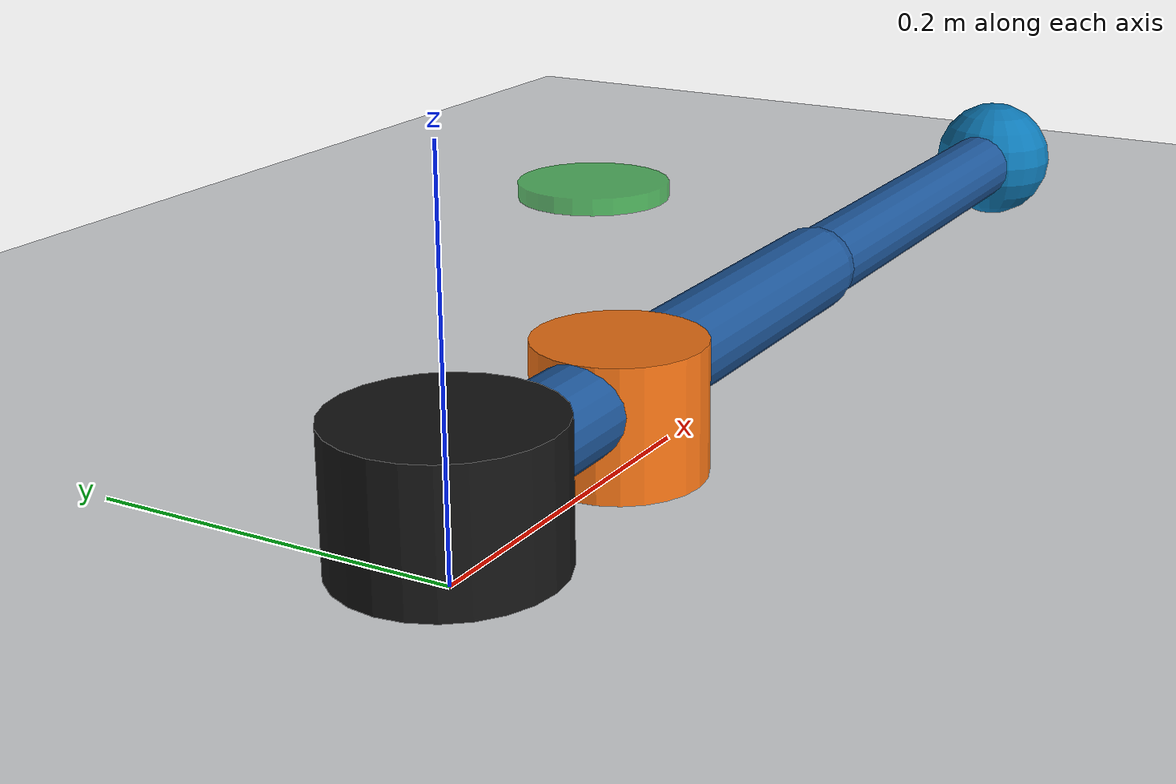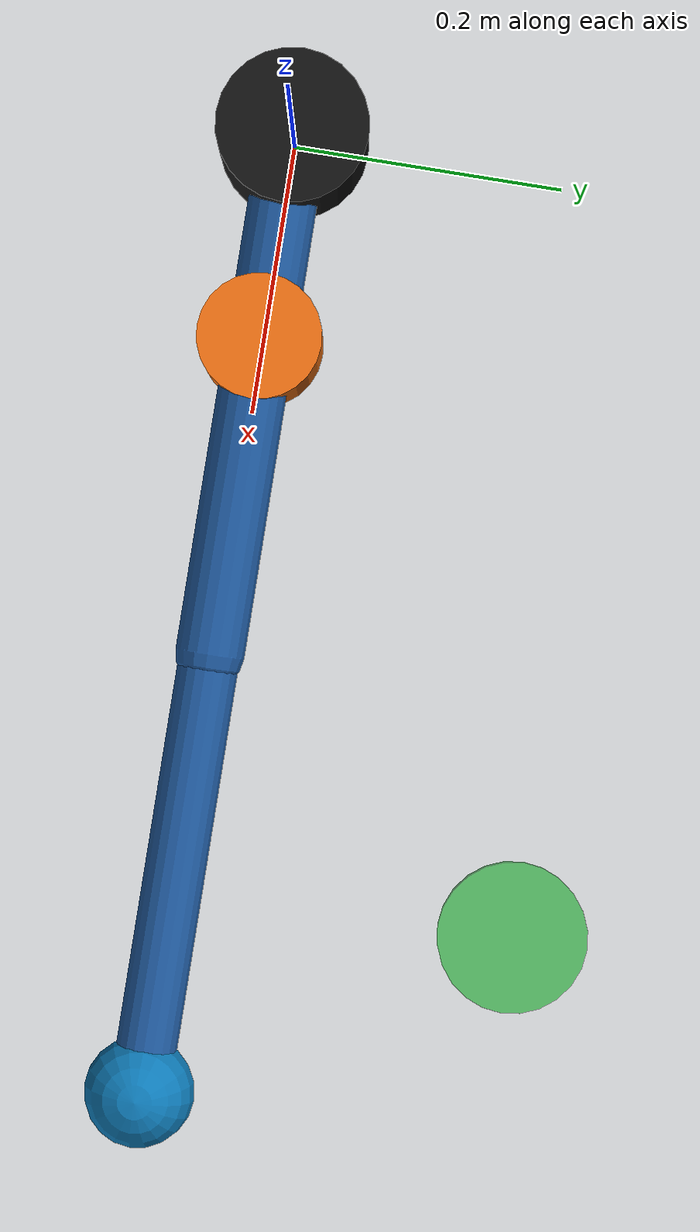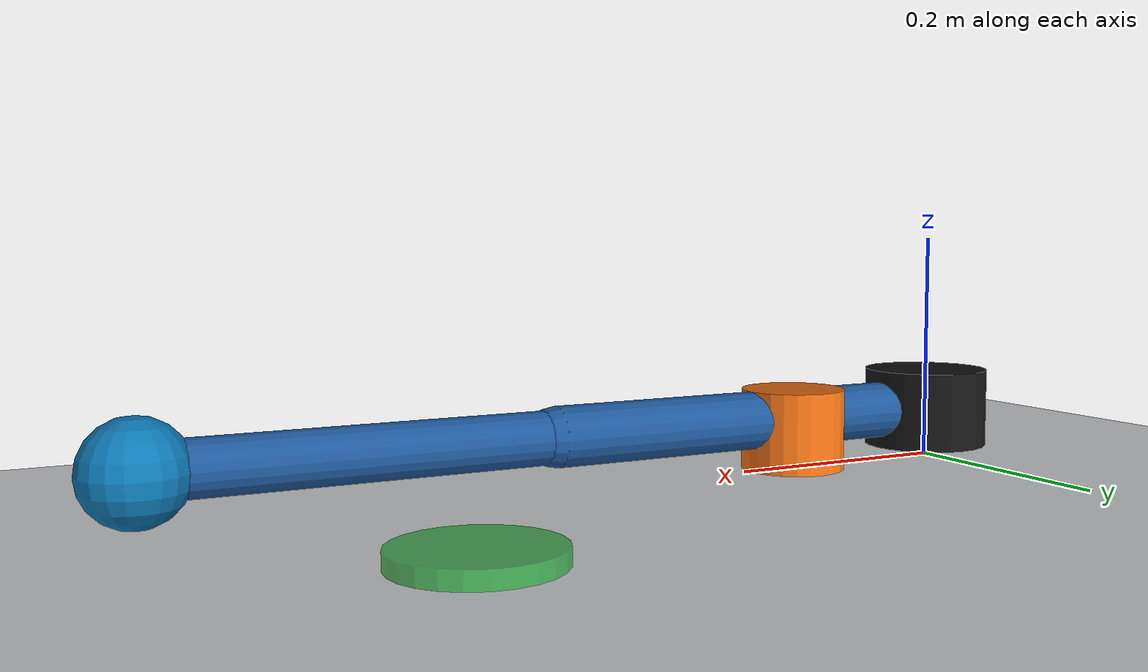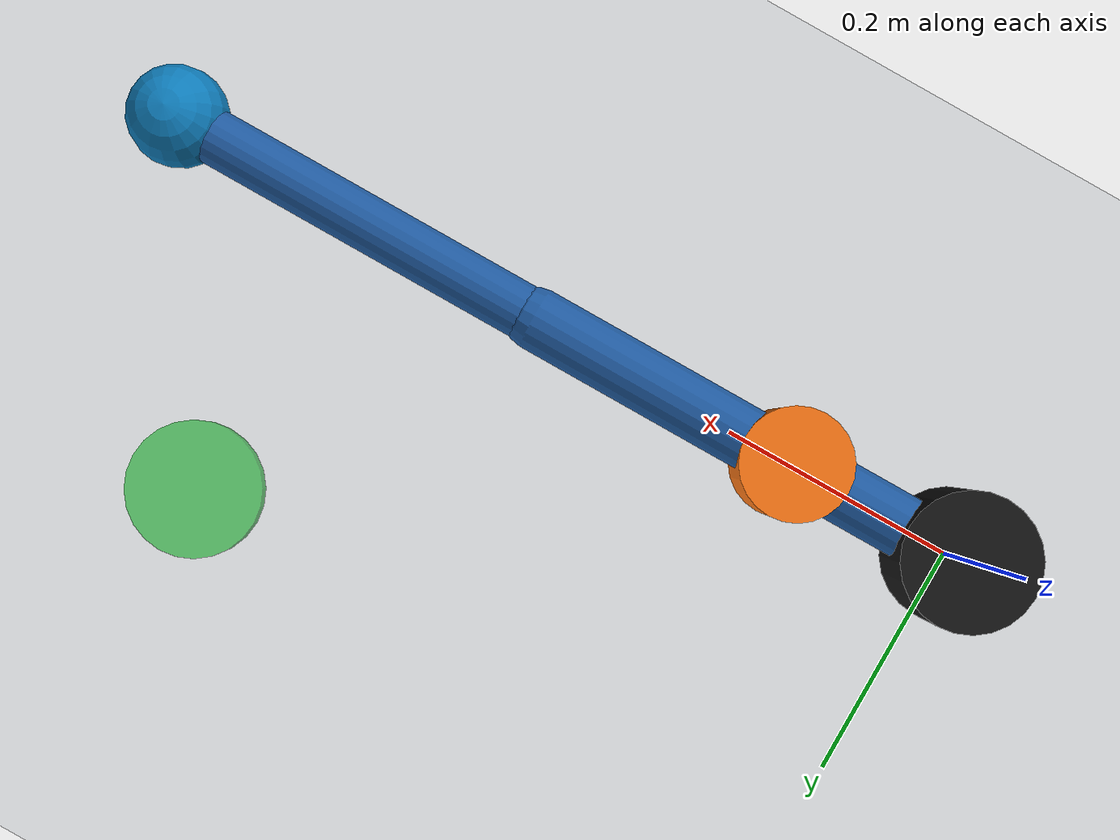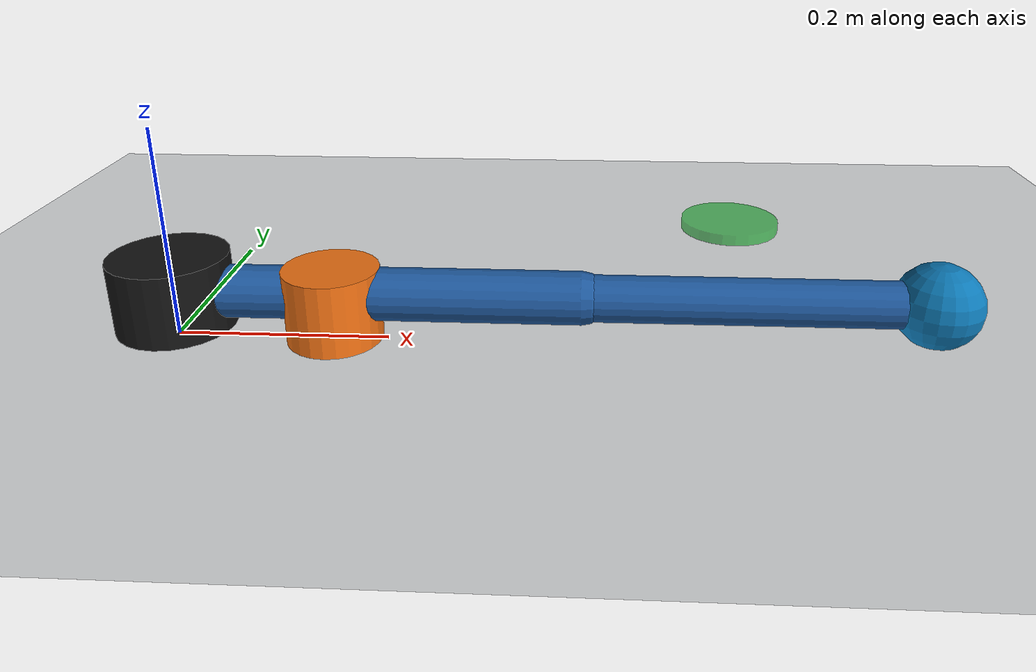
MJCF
<mujoco model="robot_autoresearch_planar_arm">
  <compiler angle="radian" inertiafromgeom="true"/>
  <option timestep="0.01" gravity="0 0 -9.81" integrator="RK4"/>
  <visual>
    <global offwidth="720" offheight="720"/>
  </visual>

  <default>
    <geom friction="1.0 0.005 0.0001" solref="0.02 1" solimp="0.9 0.95 0.001"/>
    <joint damping="0.12" armature="0.01"/>
    <motor ctrllimited="true" ctrlrange="-1 1"/>
  </default>

  <asset>
    <material name="mat_floor" rgba="0.86 0.87 0.88 1"/>
    <material name="mat_link" rgba="0.12 0.35 0.62 1"/>
    <material name="mat_tip" rgba="0.05 0.48 0.72 1"/>
    <material name="mat_obj" rgba="0.95 0.45 0.08 1"/>
    <material name="mat_target" rgba="0.1 0.7 0.18 0.65"/>
  </asset>

  <worldbody>
    <light name="key" pos="0 -1.6 2.4" dir="0 0.7 -1" diffuse="0.8 0.8 0.8"/>
    <camera name="top" pos="0 0 2.2" xyaxes="1 0 0 0 1 0"/>
    <geom name="floor" type="plane" size="1.4 1.4 0.02" material="mat_floor"/>

    <body name="target" pos="0.55 0.25 0.025">
      <geom name="target_geom" type="cylinder" size="0.055 0.006" material="mat_target" contype="0" conaffinity="0"/>
    </body>

    <body name="object" pos="0.15 0.0 0.035">
      <freejoint name="object_free"/>
      <geom name="object_geom" type="cylinder" size="0.045 0.035" mass="0.12" material="mat_obj"/>
    </body>

    <body name="base" pos="0 0 0.045">
      <geom name="base_geom" type="cylinder" size="0.055 0.035" rgba="0.08 0.08 0.08 1"/>
      <joint name="shoulder" type="hinge" axis="0 0 1" range="-3.14 3.14"/>
      <geom name="link1_geom" type="capsule" fromto="0 0 0 0.38 0 0" size="0.025" material="mat_link"/>
      <body name="elbow" pos="0.38 0 0">
        <joint name="elbow" type="hinge" axis="0 0 1" range="-3.14 3.14"/>
        <geom name="link2_geom" type="capsule" fromto="0 0 0 0.32 0 0" size="0.022" material="mat_link"/>
        <body name="tip" pos="0.32 0 0">
          <geom name="tip_geom" type="sphere" size="0.04" mass="0.04" material="mat_tip"/>
          <site name="ee_site" pos="0 0 0" size="0.025" rgba="0.05 0.48 0.72 1"/>
        </body>
      </body>
    </body>
  </worldbody>

  <actuator>
    <motor name="shoulder_motor" joint="shoulder" gear="1.8"/>
    <motor name="elbow_motor" joint="elbow" gear="1.5"/>
  </actuator>
</mujoco>
